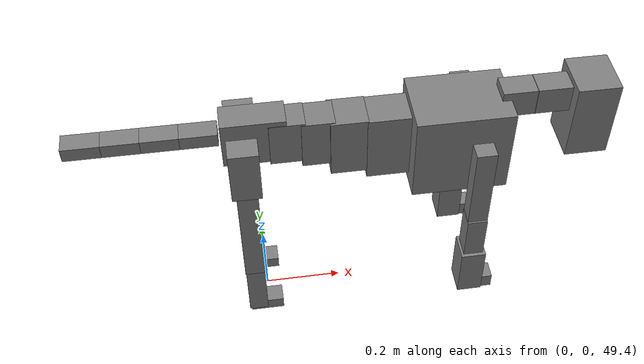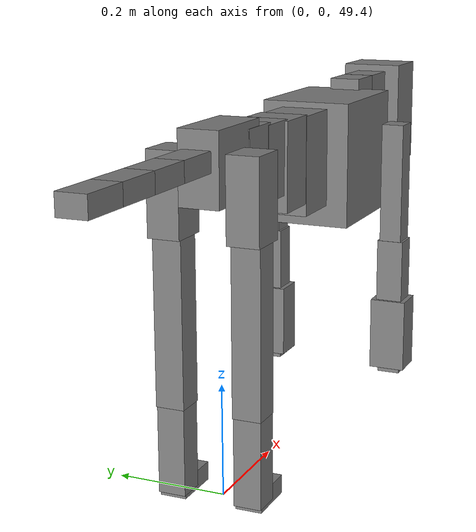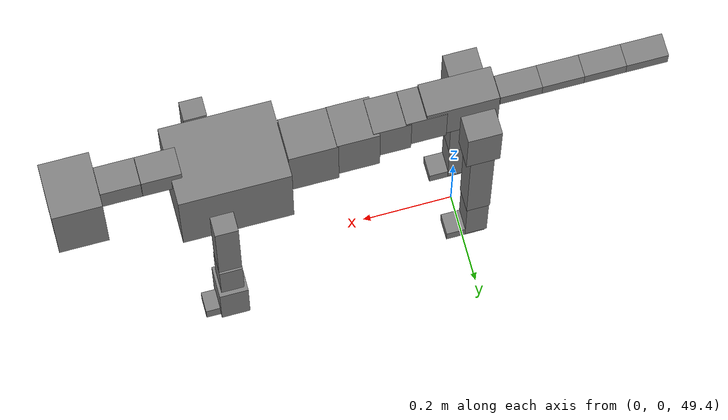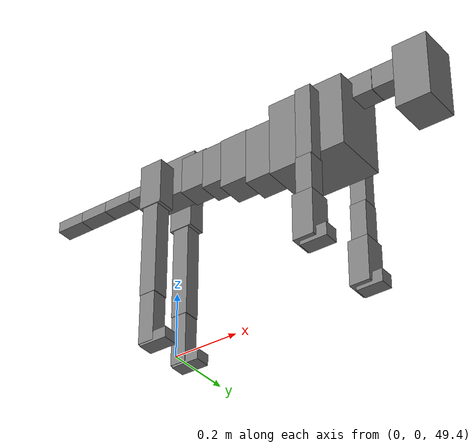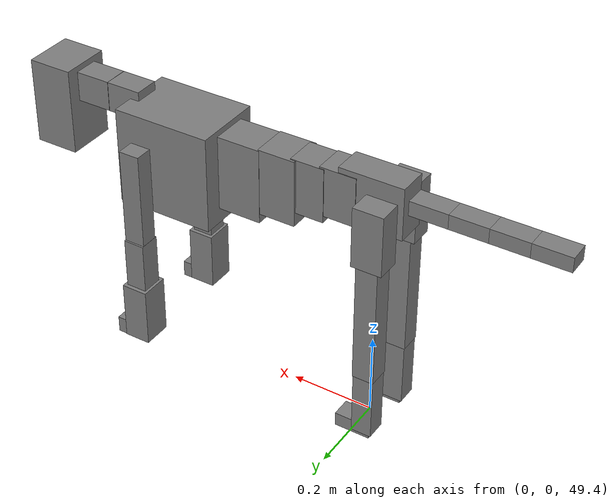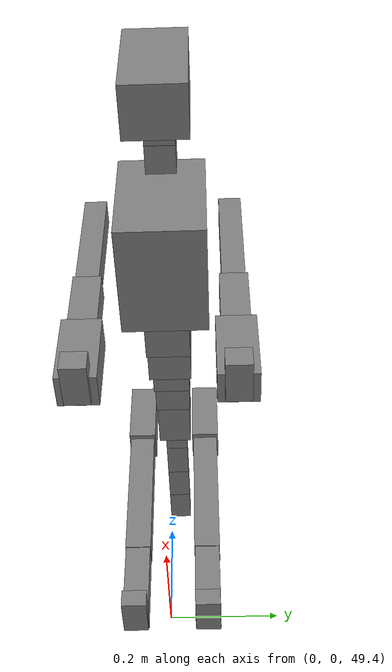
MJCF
<mujoco model="dog">

    <default>
        <joint armature="0.02" stiffness="1" damping="0.2" limited="true"/>
        <geom condim="3" friction="1 0.05 0.05" margin="0.01"/>
        <motor ctrllimited="true" ctrlrange="-1.0 1.0" forcelimited="true" gear="50"/>
    </default>

    <compiler inertiafromgeom="true" angle="radian"/>

    <option timestep="0.016" iterations="50" tolerance="1e-10" solver="Newton" jacobian="dense" cone="pyramidal"/>

    <size nconmax="20000" njmax="60000" nstack="5000000"/>
    <visual>
        <map force="0.1" zfar="30"/>
        <rgba haze="0.15 0.25 0.35 1"/>
        <quality shadowsize="2048"/>
        <global offwidth="800" offheight="800"/>
    </visual>

    <asset>
        <texture type="skybox" builtin="gradient" rgb1="0.3 0.5 0.7" rgb2="0 0 0" width="512" height="512"/>
        <texture name="texplane" type="2d" builtin="checker" rgb1=".2 .3 .4" rgb2=".1 0.15 0.2" width="512" height="512"
                 mark="cross" markrgb=".8 .8 .8"/>
        <texture name="texgeom" type="cube" builtin="flat" mark="cross" width="127" height="1278" rgb1="0.8 0.6 0.4"
                 rgb2="0.8 0.6 0.4" markrgb="1 1 1" random="0.01"/>

        <material name="matplane" reflectance="0.3" texture="texplane" texrepeat="1 1" texuniform="true"/>
        <material name="matgeom" texture="texgeom" texuniform="true" rgba="0.8 0.6 .4 1"/>
    </asset>

    <worldbody>
        <geom name="floor" pos="0 0 0" size="0 0 .25" type="plane" material="matplane" condim="3"/>

        <light directional="false" diffuse=".2 .2 .2" specular="0 0 0" pos="0 0 5" dir="0 0 -1" castshadow="false"/>
        <light mode="targetbodycom" target="torso" directional="false" diffuse=".8 .8 .8" specular="0.3 0.3 0.3"
               pos="0 0 4.0" dir="0 0 -1"/>

        <body name="root" pos="0 0 50">
            <freejoint name="root_1"/>
            <geom type="box" pos="0 0 -0.02" size="0.0774  0.0358  0.063" density="2030"/>

            <body name="spine1" pos="0.054 0 0">
                <joint name="spine1_y" axis="0 1 0" range="0 0.7" limited="true"/>
                <geom type="box" pos="0.02375 0 -0.03" size="0.04375  0.0375  0.05985" density="2030"/>

                <body name="spine2" pos="0.0612 0 0">
                    <joint name="spine2_y" axis="0 1 0" range="-0.15 0.15" limited="true"/>
                    <geom type="box" pos="0.03555  0  -0.04" size="0.04055  0.039  0.06615" density="2030"/>

                    <body name="spine3" pos="0.0730 0 0">
                        <joint name="spine3_y" axis="0 1 0" range="-0.15 0.15" limited="true"/>
                        <geom type="box" pos="0.03555  0  -0.057" size="0.04555  0.0445  0.081" density="2030"/>

                        <body name="spine4" pos="0.0780 0 0">
                            <joint name="spine4_y" axis="0 1 0" range="-0.15 0.15" limited="true"/>
                            <geom type="box" pos="0.05265  0  -0.07" size="0.05265  0.045  0.09135" density="2030"/>

                            <body name="torso" pos="0.1082 0 0">
                                <joint name="torso_y" axis="0 1 0" range="-0.15 0.15" limited="true"/>
                                <geom type="box" pos="0.11925  0  -0.085" size="0.11925  0.085  0.11745"
                                      density="2030"/>

                                <body name="neck1" pos="0.2160  0   0.0180">
                                    <joint name="neck1_y" axis="0 1 0" range="-1.2  -1" limited="true"/>
                                    <geom type="box" pos="0.0423  0  0" size="0.0423  0.03  0.036" density="2325"/>

                                    <body name="neck2" pos="0.0853  0  0">
                                        <joint name="neck2_y" axis="0 1 0" range="0.1  0" limited="true"/>
                                        <geom type="box" pos="0.0423  0  0" size="0.0423  0.03  0.036" density="2325"/>

                                        <body name="head" pos="0.0853  0  0">
                                            <joint name="head_y" axis="0 1 0" range="-0.3  -0.2" limited="true"/>
                                            <geom type="box" pos="0.0531  0  -0.055" size="0.0531  0.06  0.1044"
                                                  density="4030"/>

                                        </body>
                                    </body>
                                </body>

                                <body name="front_shoulder" pos="0.156  0   -0.0480">
                                    <joint name="front_shoulder_y" axis="0 1 0" range="-1 1.5" limited="true"/>
                                    <geom type="box" pos="0 0.13 -0.1025" size="0.0248  0.0212  0.1292" density="1158"/>
                                    <geom type="box" pos="0 -0.13 -0.1025" size="0.0248  0.0212  0.1292"
                                          density="1158"/>

                                    <body name="front_elbow" pos="0  0  -0.2051">
                                        <joint name="front_elbow_y" axis="0 1 0" range="-2 0" limited="true"/>
                                        <geom type="box" pos="0 0.13 -0.0673" size="0.0251  0.0256  0.0673"
                                              density="1081"/>
                                        <geom type="box" pos="0 -0.13 -0.0673" size="0.0251  0.0256  0.0673"
                                              density="1081"/>

                                        <body name="front_wrist" pos="0  0  -0.1347">
                                            <joint name="front_wrist_y" axis="0 1 0" range="-0.2 0" limited="true"/>
                                            <geom type="box" pos="0 0.13 -0.0574" size="0.0314  0.0349  0.0706"
                                                  density="1664"/>
                                            <geom type="box" pos="0 -0.13 -0.0574" size="0.0314  0.0349  0.0706"
                                                  density="1664"/>

                                            <body name="front_finger_end" pos="0  0  -0.1149">
                                                <joint name="front_finger_y" axis="0 1 0" range="-0.4 1"
                                                       limited="true"/>
                                                <geom type="box" pos="0.0222  0.13  -0.0050"
                                                      size="0.0406  0.0222  0.0200" density="1515"/>
                                                <geom type="box" pos="0.0222  -0.13  -0.0050"
                                                      size="0.0406  0.0222  0.0200" density="1515"/>

                                            </body>

                                        </body>
                                    </body>
                                </body>

                            </body>
                        </body>
                    </body>
                </body>
            </body>

            <body name="back_hip" pos="-0.03 0 -0.018">
                <joint name="back_hip_y" axis="0 1 0" range="-1.5 0.3" limited="true"/>
                <geom type="box" pos="0 0.07 -0.0502" size="0.0365  0.0286  0.0730" density="1154"/>
                <geom type="box" pos="0 -0.07 -0.0502" size="0.0365  0.0286  0.0730" density="1154"/>

                <body name="back_knee" pos="0  0  -0.1005">
                    <joint name="back_knee_y" axis="0 1 0" range="0 2.8" limited="true"/>
                    <geom type="box" pos="0 0.07 -0.1498" size="0.0260  0.0256  0.1653" density="1227"/>
                    <geom type="box" pos="0 -0.07 -0.1498" size="0.0260  0.0256  0.1653" density="1227"/>

                    <body name="back_ankle" pos="0  0  -0.2995">
                        <joint name="back_ankle_y" axis="0 1 0" range="-2.2 0" limited="true"/>
                        <geom type="box" pos="0 0.07 -0.0796" size="0.0245  0.0245  0.0908" density="1284"/>
                        <geom type="box" pos="0 -0.07 -0.0796" size="0.0245  0.0245  0.0908" density="1284"/>

                        <body name="back_toe_end" pos="0  0  -0.1591">
                            <joint name="back_toe_y" axis="0 1 0" range="-0.4 1" limited="true"/>
                            <geom type="box" pos="0.0236  0.07  -0.0017" size="0.0432  0.0236  0.0167" density="1515"/>
                            <geom type="box" pos="0.0236  -0.07  -0.0017" size="0.0432  0.0236  0.0167" density="1515"/>

                        </body>
                    </body>
                </body>
            </body>

            <body name="tail1" pos="-0.074 0 -0.006">
                <joint name="tail1_y" axis="0 1 0" range="-0.2 0.2" limited="true"/>
                <geom type="box" pos="-0.0536  0  0" size="0.045  0.025  0.0175" density="1587"/>

                <body name="tail2" pos="-0.09 0 0">
                    <joint name="tail2_y" axis="0 1 0" range="-0.2 0.2" limited="true"/>
                    <geom type="box" pos="-0.0536  0  0" size="0.045  0.025  0.0175" density="1587"/>

                    <body name="tail3" pos="-0.09 0 0">
                        <joint name="tail3_y" axis="0 1 0" range="-0.2 0.2" limited="true"/>
                        <geom type="box" pos="-0.0536  0  0" size="0.045  0.025  0.0175" density="1587"/>

                        <body name="tail4" pos="-0.09 0 0">
                            <joint name="tail4_y" axis="0 1 0" range="-0.2 0.2" limited="true"/>
                            <geom type="box" pos="-0.0536  0  0" size="0.045  0.025  0.0175" density="1587"/>

                        </body>
                    </body>
                </body>
            </body>
        </body>
    </worldbody>

    <actuator>
        <motor joint="spine1_y" forcerange="-150 150     "/>
        <motor joint="spine2_y" forcerange="-150 150     "/>
        <motor joint="spine3_y" forcerange="-150 150     "/>
        <motor joint="spine4_y" forcerange="-150 150     "/>
        <motor joint="torso_y" forcerange="-150 150     "/>
        <motor joint="neck1_y" forcerange="-100 100       "/>
        <motor joint="neck2_y" forcerange="-100 100       "/>
        <motor joint="head_y" forcerange="-150 150       "/>
        <motor joint="front_shoulder_y" forcerange="-113.74 127.44"/>
        <motor joint="front_elbow_y" forcerange="-162.75 123.66"/>
        <motor joint="front_wrist_y" forcerange="-133.28 145.93"/>
        <motor joint="front_finger_y" forcerange="-48.08 30.10"/>
        <motor joint="back_hip_y" forcerange="-205.58 376.42"/>
        <motor joint="back_knee_y" forcerange="-337.67 234.88"/>
        <motor joint="back_angle_y" forcerange="-62.16 230.40"/>
        <motor joint="back_toe_y" forcerange="-48.38 60.19"/>
        <motor joint="tail1_y" forcerange="-50 50     "/>
        <motor joint="tail2_y" forcerange="-50 50     "/>
        <motor joint="tail3_y" forcerange="-50 50     "/>
        <motor joint="tail4_y" forcerange="-50 50     "/>
    </actuator>
</mujoco>
